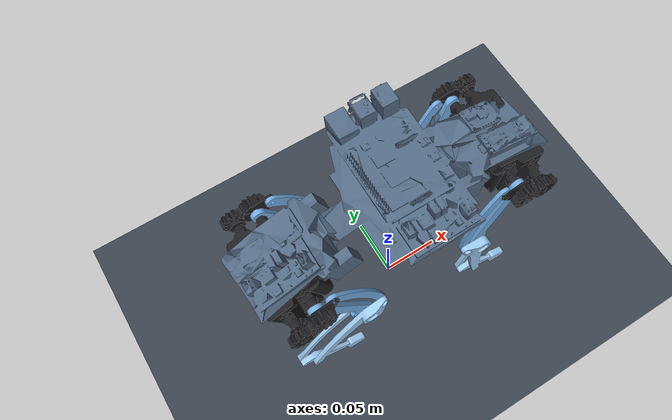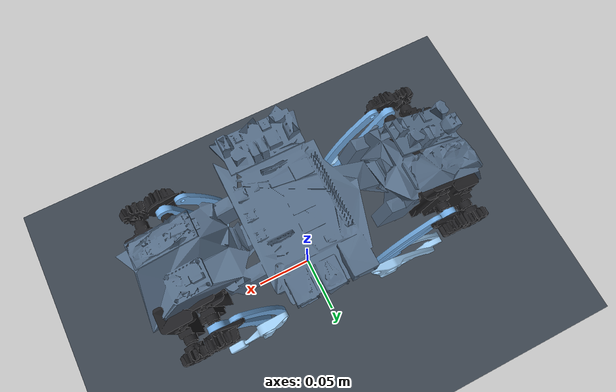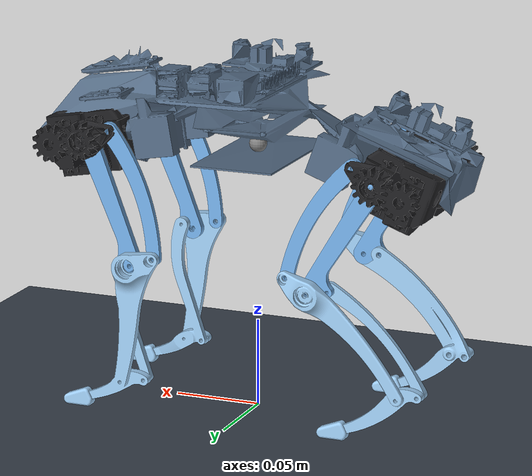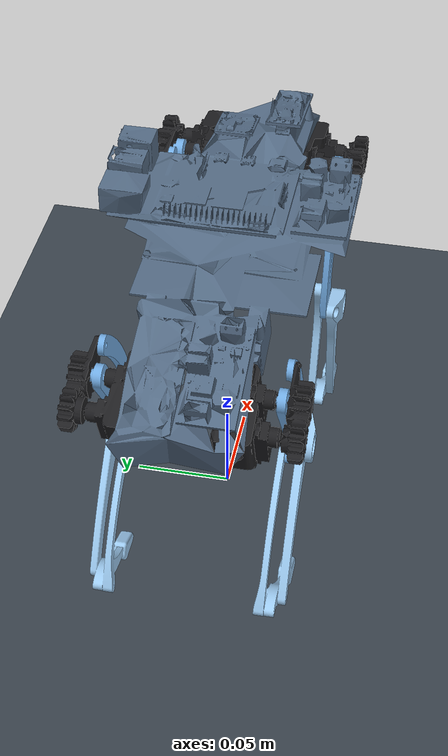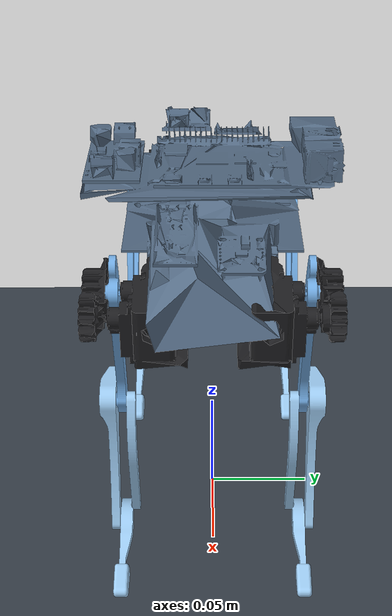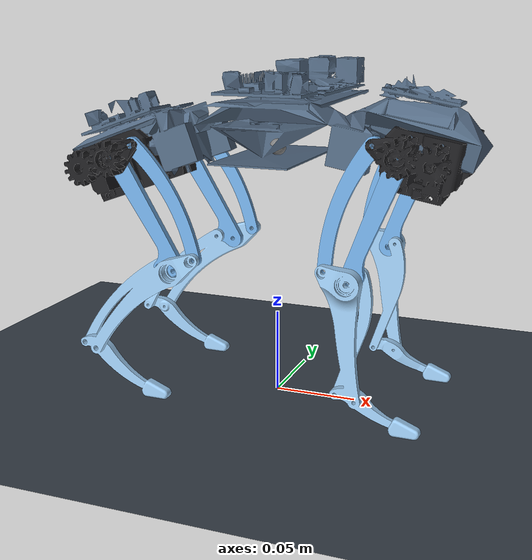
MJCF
<mujoco model="fox scene">
  <include file="fox.xml"/>
  <visual><headlight diffuse="0.6 0.6 0.6" ambient="0.3 0.3 0.3"/><global azimuth="135" elevation="-20" offwidth="1280" offheight="960"/></visual>
  <asset><texture type="2d" name="grid" builtin="checker" rgb1="0.25 0.3 0.35" rgb2="0.2 0.22 0.25" width="300" height="300"/>
    <material name="grid" texture="grid" texrepeat="8 8" reflectance="0.1"/></asset>
  <worldbody><light pos="0 0 1.5" dir="0 0 -1" directional="true"/>
    <geom name="floor" size="0 0 0.05" type="plane" material="grid" contype="0" conaffinity="1" friction="1.0 0.02 0.01"/></worldbody>
</mujoco>

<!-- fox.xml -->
<mujoco model="fox">
  <compiler angle="radian" meshdir="../meshes" autolimits="true"/>
  <option timestep="0.002" integrator="implicitfast"/>
  <default>
    <joint armature="0.0005" damping="0.01" frictionloss="0.002"/>
    <position kp="2" kv="0.05" forcerange="-0.47 0.47" inheritrange="1"/>
    <default class="visual"><geom type="mesh" contype="0" conaffinity="0" group="2" density="0"/></default>
    <default class="collision"><geom type="mesh" contype="1" conaffinity="0" group="3" density="0" friction="1.0 0.02 0.01" condim="3"/></default>
  </default>
  <asset>
    <mesh name="base_vis" file="visual/base.stl"/>
    <mesh name="base_col" file="collision/base.stl"/>
    <mesh name="FL_hip_vis" file="visual/FL_hip.stl"/>
    <mesh name="FL_hip_col" file="collision/FL_hip.stl"/>
    <mesh name="FL_thigh_vis" file="visual/FL_thigh.stl"/>
    <mesh name="FL_thigh_col" file="collision/FL_thigh.stl"/>
    <mesh name="FL_calf_vis" file="visual/FL_calf.stl"/>
    <mesh name="FL_calf_col" file="collision/FL_calf.stl"/>
    <mesh name="FR_hip_vis" file="visual/FR_hip.stl"/>
    <mesh name="FR_hip_col" file="collision/FR_hip.stl"/>
    <mesh name="FR_thigh_vis" file="visual/FR_thigh.stl"/>
    <mesh name="FR_thigh_col" file="collision/FR_thigh.stl"/>
    <mesh name="FR_calf_vis" file="visual/FR_calf.stl"/>
    <mesh name="FR_calf_col" file="collision/FR_calf.stl"/>
    <mesh name="RL_hip_vis" file="visual/RL_hip.stl"/>
    <mesh name="RL_hip_col" file="collision/RL_hip.stl"/>
    <mesh name="RL_thigh_vis" file="visual/RL_thigh.stl"/>
    <mesh name="RL_thigh_col" file="collision/RL_thigh.stl"/>
    <mesh name="RL_calf_vis" file="visual/RL_calf.stl"/>
    <mesh name="RL_calf_col" file="collision/RL_calf.stl"/>
    <mesh name="RR_hip_vis" file="visual/RR_hip.stl"/>
    <mesh name="RR_hip_col" file="collision/RR_hip.stl"/>
    <mesh name="RR_thigh_vis" file="visual/RR_thigh.stl"/>
    <mesh name="RR_thigh_col" file="collision/RR_thigh.stl"/>
    <mesh name="RR_calf_vis" file="visual/RR_calf.stl"/>
    <mesh name="RR_calf_col" file="collision/RR_calf.stl"/>
  </asset>
  <worldbody>
    <body name="base" pos="0.000000 0.000000 0.152839">
      <freejoint name="root"/>
      <inertial pos="-0.000626 0.000923 0.016197" mass="0.330454" fullinertia="2.7830e-04 1.4975e-03 1.6114e-03 -4.0202e-06 -9.4188e-05 -9.4332e-06"/>
      <geom class="visual" mesh="base_vis" rgba="0.33 0.42 0.52 1"/>
      <geom class="collision" mesh="base_col"/>
      <site name="imu" pos="0 0 0"/>
      <body name="FL_hip" pos="0.071686 0.024238 0.007391">
        <joint name="FL_hip_joint" axis="0.984808 0 -0.173648" range="-0.5000 0.5000"/>
        <inertial pos="0.019785 0.003941 -0.008725" mass="0.034795" fullinertia="7.0860e-06 7.7148e-06 9.5657e-06 -9.2844e-07 2.6524e-07 -7.9948e-07"/>
        <geom class="visual" mesh="FL_hip_vis" rgba="0.12 0.12 0.13 1"/>
        <geom class="collision" mesh="FL_hip_col"/>
        <body name="FL_thigh" pos="0.013074 0.018552 -0.002611">
          <joint name="FL_thigh_joint" axis="0 1 0" range="-1.2000 1.2000"/>
          <inertial pos="-0.019411 0.000000 -0.031246" mass="0.007137" fullinertia="3.9661e-06 5.0344e-06 1.0913e-06 3.4079e-08 -1.2369e-06 -1.2786e-08"/>
          <geom class="visual" mesh="FL_thigh_vis" rgba="0.45 0.68 0.9 1"/>
          <geom class="collision" mesh="FL_thigh_col"/>
          <body name="FL_calf" pos="-0.026270 0.001617 -0.070250">
            <joint name="FL_calf_joint" axis="0 1 0" range="-1.2000 1.2000"/>
            <inertial pos="0.003982 0.000000 -0.035025" mass="0.010363" fullinertia="9.1729e-06 1.0287e-05 1.4986e-06 1.2674e-07 2.0368e-06 -3.7453e-07"/>
            <geom class="visual" mesh="FL_calf_vis" rgba="0.62 0.8 0.95 1"/>
            <geom class="collision" mesh="FL_calf_col"/>
          </body>
        </body>
      </body>
      <body name="FR_hip" pos="0.071686 -0.024262 0.007391">
        <joint name="FR_hip_joint" axis="0.984808 0 -0.173648" range="-0.5000 0.5000"/>
        <inertial pos="0.019746 -0.003863 -0.008682" mass="0.034796" fullinertia="7.0880e-06 7.7402e-06 9.5884e-06 9.1663e-07 2.7815e-07 7.9682e-07"/>
        <geom class="visual" mesh="FR_hip_vis" rgba="0.12 0.12 0.13 1"/>
        <geom class="collision" mesh="FR_hip_col"/>
        <body name="FR_thigh" pos="0.013074 -0.018528 -0.002611">
          <joint name="FR_thigh_joint" axis="0 1 0" range="-1.2000 1.2000"/>
          <inertial pos="-0.019412 -0.000000 -0.031245" mass="0.007137" fullinertia="3.9665e-06 5.0346e-06 1.0911e-06 -3.4069e-08 -1.2368e-06 1.2770e-08"/>
          <geom class="visual" mesh="FR_thigh_vis" rgba="0.45 0.68 0.9 1"/>
          <geom class="collision" mesh="FR_thigh_col"/>
          <body name="FR_calf" pos="-0.026270 -0.001738 -0.070250">
            <joint name="FR_calf_joint" axis="0 1 0" range="-1.2000 1.2000"/>
            <inertial pos="0.003858 0.000000 -0.033944" mass="0.010693" fullinertia="9.5724e-06 1.0689e-05 1.5113e-06 -1.3175e-07 2.0815e-06 4.1847e-07"/>
            <geom class="visual" mesh="FR_calf_vis" rgba="0.62 0.8 0.95 1"/>
            <geom class="collision" mesh="FR_calf_col"/>
          </body>
        </body>
      </body>
      <body name="RL_hip" pos="-0.073606 0.024238 -0.000350">
        <joint name="RL_hip_joint" axis="0.939693 0 0.34202" range="-0.5000 0.5000"/>
        <inertial pos="-0.017984 0.003905 -0.011670" mass="0.035295" fullinertia="7.3868e-06 7.9480e-06 9.5198e-06 1.0509e-06 -6.3004e-07 -6.2420e-07"/>
        <geom class="visual" mesh="RL_hip_vis" rgba="0.12 0.12 0.13 1"/>
        <geom class="collision" mesh="RL_hip_col"/>
        <body name="RL_thigh" pos="-0.012394 0.018550 -0.004430">
          <joint name="RL_thigh_joint" axis="-0 1 -0" range="-1.2000 1.2000"/>
          <inertial pos="0.024557 0.000000 -0.028310" mass="0.007402" fullinertia="3.7591e-06 5.3664e-06 1.6335e-06 -2.7407e-08 1.7162e-06 -2.7046e-08"/>
          <geom class="visual" mesh="RL_thigh_vis" rgba="0.45 0.68 0.9 1"/>
          <geom class="collision" mesh="RL_thigh_col"/>
          <body name="RL_calf" pos="0.038070 0.001795 -0.064620">
            <joint name="RL_calf_joint" axis="-0 1 -0" range="-1.2000 1.2000"/>
            <inertial pos="-0.025991 -0.000000 -0.030664" mass="0.010429" fullinertia="8.2747e-06 1.2726e-05 4.7879e-06 -4.6141e-07 -3.5417e-06 -3.9037e-07"/>
            <geom class="visual" mesh="RL_calf_vis" rgba="0.62 0.8 0.95 1"/>
            <geom class="collision" mesh="RL_calf_col"/>
          </body>
        </body>
      </body>
      <body name="RR_hip" pos="-0.073382 -0.024238 -0.000187">
        <joint name="RR_hip_joint" axis="0.939693 0 0.34202" range="-0.5000 0.5000"/>
        <inertial pos="-0.017561 -0.003556 -0.012419" mass="0.036785" fullinertia="7.7533e-06 8.5166e-06 9.9446e-06 -1.1845e-06 -5.7333e-07 7.5455e-07"/>
        <geom class="visual" mesh="RR_hip_vis" rgba="0.12 0.12 0.13 1"/>
        <geom class="collision" mesh="RR_hip_col"/>
        <body name="RR_thigh" pos="-0.012618 -0.018531 -0.004593">
          <joint name="RR_thigh_joint" axis="-0 1 -0" range="-1.2000 1.2000"/>
          <inertial pos="0.024683 -0.000000 -0.028419" mass="0.007311" fullinertia="3.6638e-06 5.2413e-06 1.6010e-06 3.0768e-08 1.6727e-06 2.2388e-08"/>
          <geom class="visual" mesh="RR_thigh_vis" rgba="0.45 0.68 0.9 1"/>
          <geom class="collision" mesh="RR_thigh_col"/>
          <body name="RR_calf" pos="0.038070 -0.001680 -0.064620">
            <joint name="RR_calf_joint" axis="-0 1 -0" range="-1.2000 1.2000"/>
            <inertial pos="-0.026625 -0.000000 -0.031602" mass="0.009974" fullinertia="7.8713e-06 1.2019e-05 4.4615e-06 4.0552e-07 -3.2046e-06 3.2966e-07"/>
            <geom class="visual" mesh="RR_calf_vis" rgba="0.62 0.8 0.95 1"/>
            <geom class="collision" mesh="RR_calf_col"/>
          </body>
        </body>
      </body>
    </body>
  </worldbody>
  <actuator>
    <position name="FL_hip" joint="FL_hip_joint"/>
    <position name="FL_thigh" joint="FL_thigh_joint"/>
    <position name="FL_calf" joint="FL_calf_joint"/>
    <position name="FR_hip" joint="FR_hip_joint"/>
    <position name="FR_thigh" joint="FR_thigh_joint"/>
    <position name="FR_calf" joint="FR_calf_joint"/>
    <position name="RL_hip" joint="RL_hip_joint"/>
    <position name="RL_thigh" joint="RL_thigh_joint"/>
    <position name="RL_calf" joint="RL_calf_joint"/>
    <position name="RR_hip" joint="RR_hip_joint"/>
    <position name="RR_thigh" joint="RR_thigh_joint"/>
    <position name="RR_calf" joint="RR_calf_joint"/>
  </actuator>
  <sensor>
    <framequat name="imu_quat" objtype="site" objname="imu"/>
    <gyro name="imu_gyro" site="imu"/>
    <accelerometer name="imu_acc" site="imu"/>
  </sensor>
</mujoco>
